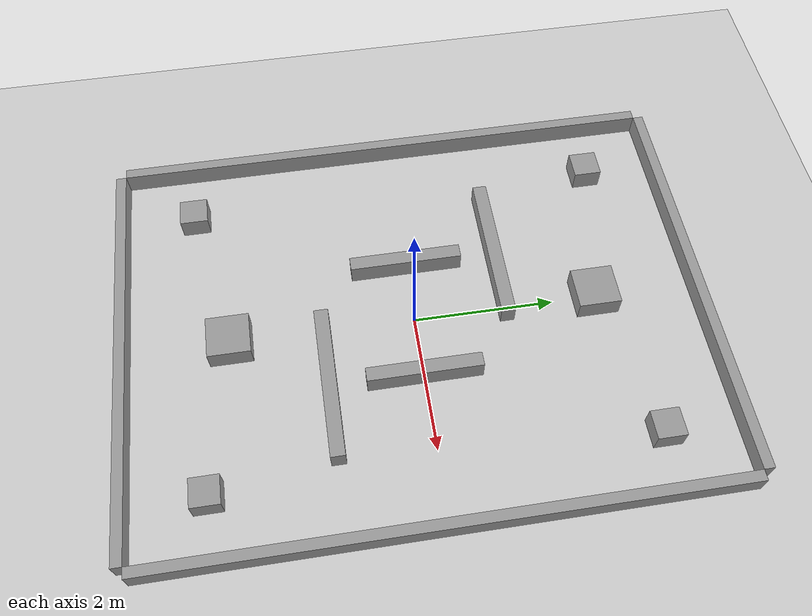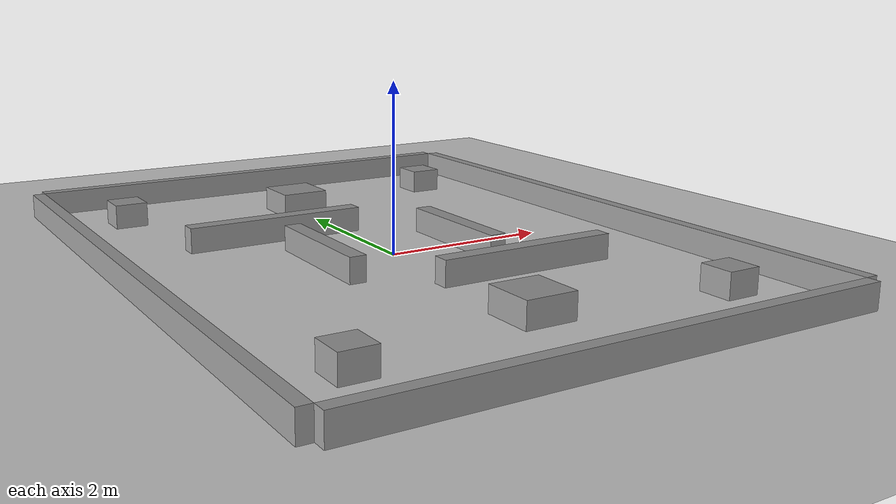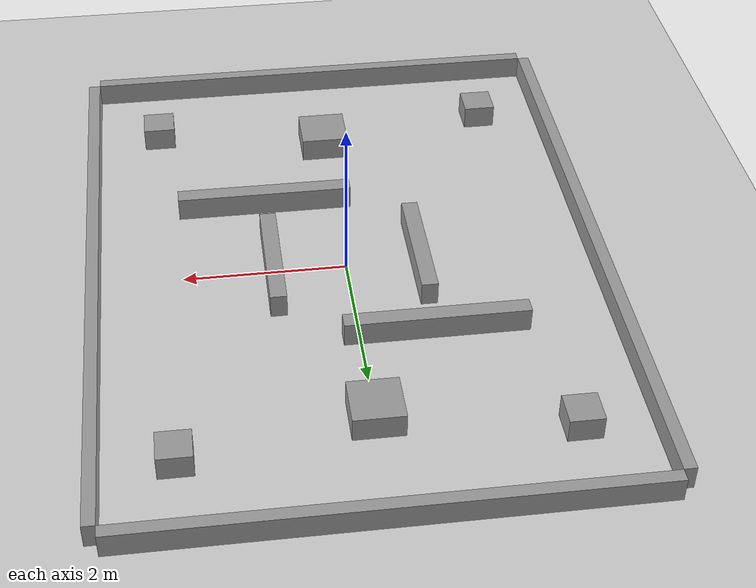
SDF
<?xml version='1.0'?>
<sdf version='1.6'>
  <world name='arena_6x8'>
    <!-- Lighting -->
    <light name='sun' type='directional'>
      <cast_shadows>1</cast_shadows>
      <pose frame=''>0 0 10 0 -0 0</pose>
      <diffuse>0.8 0.8 0.8 1</diffuse>
      <specular>0.2 0.2 0.2 1</specular>
      <attenuation>
        <range>1000</range>
        <constant>0.9</constant>
        <linear>0.01</linear>
        <quadratic>0.001</quadratic>
      </attenuation>
      <direction>-0.5 0.1 -0.9</direction>
    </light>

    <!-- Ground -->
    <model name='ground_plane'>
      <static>1</static>
      <link name='link'>
        <collision name='collision'>
          <geometry>
            <plane>
              <normal>0 0 1</normal>
              <size>100 100</size>
            </plane>
          </geometry>
          <surface>
            <contact>
              <collide_bitmask>65535</collide_bitmask>
              <ode/>
            </contact>
            <friction>
              <ode>
                <mu>100</mu>
                <mu2>50</mu2>
              </ode>
              <torsional>
                <ode/>
              </torsional>
            </friction>
            <bounce/>
          </surface>
          <max_contacts>10</max_contacts>
        </collision>
        <visual name='visual'>
          <cast_shadows>0</cast_shadows>
          <geometry>
            <plane>
              <normal>0 0 1</normal>
              <size>100 100</size>
            </plane>
          </geometry>
          <material>
            <script>
              <uri>file://media/materials/scripts/gazebo.material</uri>
              <name>Gazebo/Grey</name>
            </script>
          </material>
        </visual>
        <self_collide>0</self_collide>
        <enable_wind>0</enable_wind>
        <kinematic>0</kinematic>
      </link>
    </model>

    <!-- Physics / environment -->
    <gravity>0 0 -9.8</gravity>
    <magnetic_field>6e-06 2.3e-05 -4.2e-05</magnetic_field>
    <atmosphere type='adiabatic'/>
    <physics name='default_physics' default='0' type='ode'>
      <max_step_size>0.001</max_step_size>
      <real_time_factor>1</real_time_factor>
      <real_time_update_rate>1000</real_time_update_rate>
    </physics>
    <scene>
      <ambient>0.4 0.4 0.4 1</ambient>
      <background>0.7 0.7 0.7 1</background>
      <shadows>1</shadows>
    </scene>
    <audio>
      <device>default</device>
    </audio>
    <wind/>
    <spherical_coordinates>
      <surface_model>EARTH_WGS84</surface_model>
      <latitude_deg>0</latitude_deg>
      <longitude_deg>0</longitude_deg>
      <elevation>0</elevation>
      <heading_deg>0</heading_deg>
    </spherical_coordinates>

    <!-- Arena 6 x 8 with tactical obstacles -->
    <model name='arena_6x8'>
      <pose frame=''>0 0 0 0 0 0</pose>

      <!-- Boundary walls (inner playable area ~6 x 8) -->
      <link name='Wall_N'>
        <collision name='Wall_N_Collision'>
          <geometry><box><size>6.0 0.15 0.3</size></box></geometry>
          <pose frame=''>0 0 0.15 0 0 0</pose>
        </collision>
        <visual name='Wall_N_Visual'>
          <pose frame=''>0 0 0.15 0 0 0</pose>
          <geometry><box><size>6.0 0.15 0.3</size></box></geometry>
          <material>
            <script>
              <uri>file://media/materials/scripts/gazebo.material</uri>
              <name>Gazebo/Grey</name>
            </script>
            <ambient>1 1 1 1</ambient>
          </material>
        </visual>
        <pose frame=''>0 4.075 0 0 0 0</pose>
      </link>
      <link name='Wall_S'>
        <collision name='Wall_S_Collision'>
          <geometry><box><size>6.0 0.15 0.3</size></box></geometry>
          <pose frame=''>0 0 0.15 0 0 0</pose>
        </collision>
        <visual name='Wall_S_Visual'>
          <pose frame=''>0 0 0.15 0 0 0</pose>
          <geometry><box><size>6.0 0.15 0.3</size></box></geometry>
          <material>
            <script>
              <uri>file://media/materials/scripts/gazebo.material</uri>
              <name>Gazebo/Grey</name>
            </script>
            <ambient>1 1 1 1</ambient>
          </material>
        </visual>
        <pose frame=''>0 -4.075 0 0 0 0</pose>
      </link>
      <link name='Wall_E'>
        <collision name='Wall_E_Collision'>
          <geometry><box><size>0.15 8.0 0.3</size></box></geometry>
          <pose frame=''>0 0 0.15 0 0 0</pose>
        </collision>
        <visual name='Wall_E_Visual'>
          <pose frame=''>0 0 0.15 0 0 0</pose>
          <geometry><box><size>0.15 8.0 0.3</size></box></geometry>
          <material>
            <script>
              <uri>file://media/materials/scripts/gazebo.material</uri>
              <name>Gazebo/Grey</name>
            </script>
            <ambient>1 1 1 1</ambient>
          </material>
        </visual>
        <pose frame=''>3.075 0 0 0 0 0</pose>
      </link>
      <link name='Wall_W'>
        <collision name='Wall_W_Collision'>
          <geometry><box><size>0.15 8.0 0.3</size></box></geometry>
          <pose frame=''>0 0 0.15 0 0 0</pose>
        </collision>
        <visual name='Wall_W_Visual'>
          <pose frame=''>0 0 0.15 0 0 0</pose>
          <geometry><box><size>0.15 8.0 0.3</size></box></geometry>
          <material>
            <script>
              <uri>file://media/materials/scripts/gazebo.material</uri>
              <name>Gazebo/Grey</name>
            </script>
            <ambient>1 1 1 1</ambient>
          </material>
        </visual>
        <pose frame=''>-3.075 0 0 0 0 0</pose>
      </link>

      <!-- Central zig-zag cover -->
      <link name='Mid_Wall_1'>
        <collision name='Mid_Wall_1_Collision'>
          <geometry><box><size>2.2 0.2 0.3</size></box></geometry>
          <pose frame=''>0 0 0.15 0 0 0</pose>
        </collision>
        <visual name='Mid_Wall_1_Visual'>
          <pose frame=''>0 0 0.15 0 0 0</pose>
          <geometry><box><size>2.2 0.2 0.3</size></box></geometry>
          <material>
            <script>
              <uri>file://media/materials/scripts/gazebo.material</uri>
              <name>Gazebo/Grey</name>
            </script>
          </material>
        </visual>
        <pose frame=''>-0.9 1.3 0 0 0 0</pose>
      </link>
      <link name='Mid_Wall_2'>
        <collision name='Mid_Wall_2_Collision'>
          <geometry><box><size>2.2 0.2 0.3</size></box></geometry>
          <pose frame=''>0 0 0.15 0 0 0</pose>
        </collision>
        <visual name='Mid_Wall_2_Visual'>
          <pose frame=''>0 0 0.15 0 0 0</pose>
          <geometry><box><size>2.2 0.2 0.3</size></box></geometry>
          <material>
            <script>
              <uri>file://media/materials/scripts/gazebo.material</uri>
              <name>Gazebo/Grey</name>
            </script>
          </material>
        </visual>
        <pose frame=''>0.9 -1.3 0 0 0 0</pose>
      </link>

      <!-- Vertical cover bars -->
      <link name='Cover_V1'>
        <collision name='Cover_V1_Collision'>
          <geometry><box><size>0.2 1.6 0.3</size></box></geometry>
          <pose frame=''>0 0 0.15 0 0 0</pose>
        </collision>
        <visual name='Cover_V1_Visual'>
          <pose frame=''>0 0 0.15 0 0 0</pose>
          <geometry><box><size>0.2 1.6 0.3</size></box></geometry>
          <material>
            <script>
              <uri>file://media/materials/scripts/gazebo.material</uri>
              <name>Gazebo/Grey</name>
            </script>
          </material>
        </visual>
        <pose frame=''>-0.9 0 0 0 0 0</pose>
      </link>
      <link name='Cover_V2'>
        <collision name='Cover_V2_Collision'>
          <geometry><box><size>0.2 1.6 0.3</size></box></geometry>
          <pose frame=''>0 0 0.15 0 0 0</pose>
        </collision>
        <visual name='Cover_V2_Visual'>
          <pose frame=''>0 0 0.15 0 0 0</pose>
          <geometry><box><size>0.2 1.6 0.3</size></box></geometry>
          <material>
            <script>
              <uri>file://media/materials/scripts/gazebo.material</uri>
              <name>Gazebo/Grey</name>
            </script>
          </material>
        </visual>
        <pose frame=''>0.9 0 0 0 0 0</pose>
      </link>

      <!-- Mid-side blocks for flank cover -->
      <link name='Side_Block_N'>
        <collision name='Side_Block_N_Collision'>
          <geometry><box><size>0.6 0.6 0.3</size></box></geometry>
          <pose frame=''>0 0 0.15 0 0 0</pose>
        </collision>
        <visual name='Side_Block_N_Visual'>
          <pose frame=''>0 0 0.15 0 0 0</pose>
          <geometry><box><size>0.6 0.6 0.3</size></box></geometry>
          <material>
            <script>
              <uri>file://media/materials/scripts/gazebo.material</uri>
              <name>Gazebo/Grey</name>
            </script>
          </material>
        </visual>
        <pose frame=''>0 2.6 0 0 0 0</pose>
      </link>
      <link name='Side_Block_S'>
        <collision name='Side_Block_S_Collision'>
          <geometry><box><size>0.6 0.6 0.3</size></box></geometry>
          <pose frame=''>0 0 0.15 0 0 0</pose>
        </collision>
        <visual name='Side_Block_S_Visual'>
          <pose frame=''>0 0 0.15 0 0 0</pose>
          <geometry><box><size>0.6 0.6 0.3</size></box></geometry>
          <material>
            <script>
              <uri>file://media/materials/scripts/gazebo.material</uri>
              <name>Gazebo/Grey</name>
            </script>
          </material>
        </visual>
        <pose frame=''>0 -2.6 0 0 0 0</pose>
      </link>

      <!-- Corner pillars -->
      <link name='Pillar_NE'>
        <collision name='Pillar_NE_Collision'>
          <geometry><box><size>0.4 0.4 0.3</size></box></geometry>
          <pose frame=''>0 0 0.15 0 0 0</pose>
        </collision>
        <visual name='Pillar_NE_Visual'>
          <pose frame=''>0 0 0.15 0 0 0</pose>
          <geometry><box><size>0.4 0.4 0.3</size></box></geometry>
          <material>
            <script>
              <uri>file://media/materials/scripts/gazebo.material</uri>
              <name>Gazebo/Grey</name>
            </script>
          </material>
        </visual>
        <pose frame=''>2.2 3.0 0 0 0 0</pose>
      </link>
      <link name='Pillar_NW'>
        <collision name='Pillar_NW_Collision'>
          <geometry><box><size>0.4 0.4 0.3</size></box></geometry>
          <pose frame=''>0 0 0.15 0 0 0</pose>
        </collision>
        <visual name='Pillar_NW_Visual'>
          <pose frame=''>0 0 0.15 0 0 0</pose>
          <geometry><box><size>0.4 0.4 0.3</size></box></geometry>
          <material>
            <script>
              <uri>file://media/materials/scripts/gazebo.material</uri>
              <name>Gazebo/Grey</name>
            </script>
          </material>
        </visual>
        <pose frame=''>-2.2 3.0 0 0 0 0</pose>
      </link>
      <link name='Pillar_SE'>
        <collision name='Pillar_SE_Collision'>
          <geometry><box><size>0.4 0.4 0.3</size></box></geometry>
          <pose frame=''>0 0 0.15 0 0 0</pose>
        </collision>
        <visual name='Pillar_SE_Visual'>
          <pose frame=''>0 0 0.15 0 0 0</pose>
          <geometry><box><size>0.4 0.4 0.3</size></box></geometry>
          <material>
            <script>
              <uri>file://media/materials/scripts/gazebo.material</uri>
              <name>Gazebo/Grey</name>
            </script>
          </material>
        </visual>
        <pose frame=''>2.2 -3.0 0 0 0 0</pose>
      </link>
      <link name='Pillar_SW'>
        <collision name='Pillar_SW_Collision'>
          <geometry><box><size>0.4 0.4 0.3</size></box></geometry>
          <pose frame=''>0 0 0.15 0 0 0</pose>
        </collision>
        <visual name='Pillar_SW_Visual'>
          <pose frame=''>0 0 0.15 0 0 0</pose>
          <geometry><box><size>0.4 0.4 0.3</size></box></geometry>
          <material>
            <script>
              <uri>file://media/materials/scripts/gazebo.material</uri>
              <name>Gazebo/Grey</name>
            </script>
          </material>
        </visual>
        <pose frame=''>-2.2 -3.0 0 0 0 0</pose>
      </link>

      <static>1</static>
    </model>

    <!-- GUI camera -->
    <gui fullscreen='0'>
      <camera name='user_camera'>
        <pose frame=''>-8 0 4 0 0.2 0</pose>
        <view_controller>orbit</view_controller>
        <projection_type>perspective</projection_type>
      </camera>
    </gui>
  </world>
</sdf>
